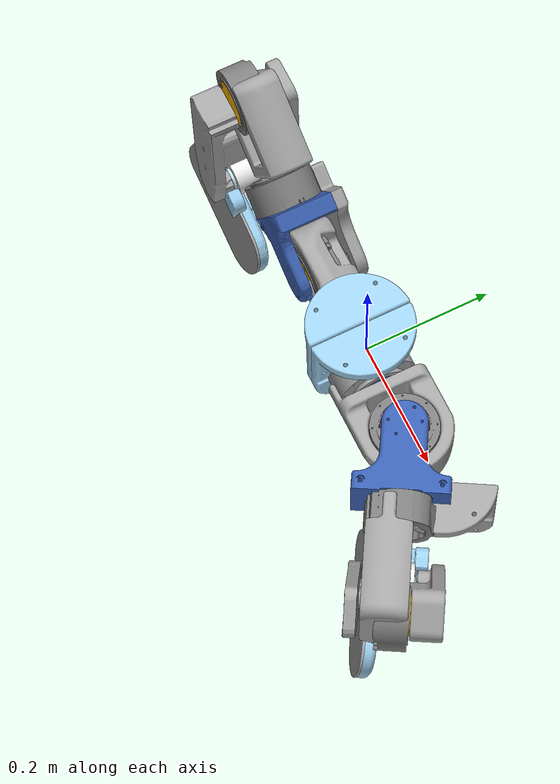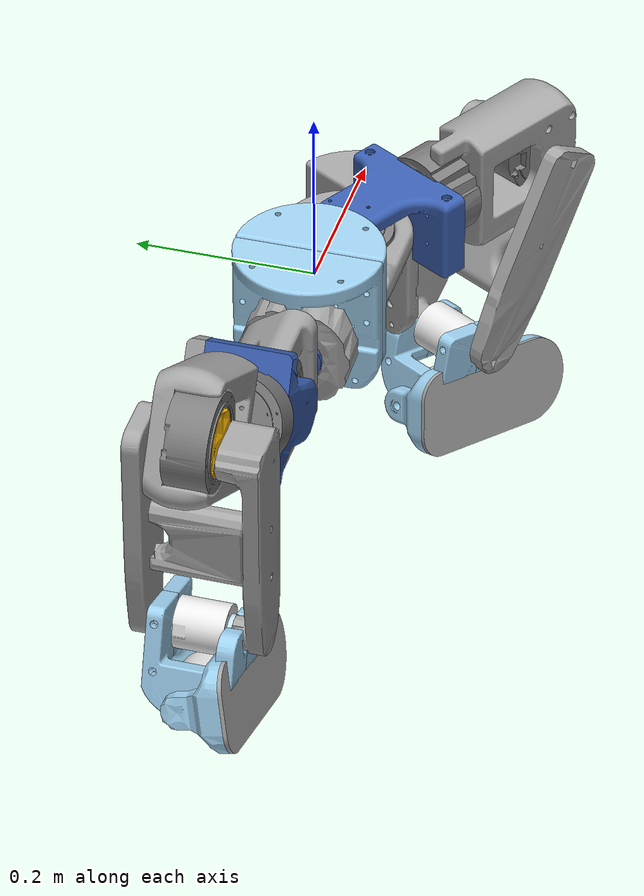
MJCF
<mujoco model="lower_limbs">
  <compiler angle="radian" meshdir="meshes/"/>

  <asset>
    <mesh name="leg_assembly_left_1_leg_part_1_2_simple" file="leg_assembly_left_1_leg_part_1_2_simple.stl"/>
    <mesh name="leg_assembly_right_1_leg_part_1_2_simple" file="leg_assembly_right_1_leg_part_1_2_simple.stl"/>
    <mesh name="leg_assembly_left_1_rmd_x12_150_mock_1_outer_x12_150_1_simple" file="leg_assembly_left_1_rmd_x12_150_mock_1_outer_x12_150_1_simple.stl"/>
    <mesh name="leg_assembly_right_1_rmd_x12_150_mock_1_outer_x12_150_1_simple" file="leg_assembly_right_1_rmd_x12_150_mock_1_outer_x12_150_1_simple.stl"/>
    <mesh name="leg_assembly_left_1_rmd_x12_150_mock_1_inner_x12_150_1_simple" file="leg_assembly_left_1_rmd_x12_150_mock_1_inner_x12_150_1_simple.stl"/>
    <mesh name="leg_assembly_right_1_rmd_x12_150_mock_1_inner_x12_150_1_simple" file="leg_assembly_right_1_rmd_x12_150_mock_1_inner_x12_150_1_simple.stl"/>
    <mesh name="leg_assembly_left_1_leg_part_2_left_1_simple" file="leg_assembly_left_1_leg_part_2_left_1_simple.stl"/>
    <mesh name="leg_assembly_right_1_leg_part_2_right_1_simple" file="leg_assembly_right_1_leg_part_2_right_1_simple.stl"/>
    <mesh name="leg_assembly_left_1_rmd_x8_90_mock_1_outer_rmd_x8_90_1_simple" file="leg_assembly_left_1_rmd_x8_90_mock_1_outer_rmd_x8_90_1_simple.stl"/>
    <mesh name="leg_assembly_right_1_rmd_x8_90_mock_1_outer_rmd_x8_90_1_simple" file="leg_assembly_right_1_rmd_x8_90_mock_1_outer_rmd_x8_90_1_simple.stl"/>
    <mesh name="leg_assembly_left_1_rmd_x8_90_mock_1_inner_rmd_x8_90_1_simple" file="leg_assembly_left_1_rmd_x8_90_mock_1_inner_rmd_x8_90_1_simple.stl"/>
    <mesh name="leg_assembly_right_1_rmd_x8_90_mock_1_inner_rmd_x8_90_1_simple" file="leg_assembly_right_1_rmd_x8_90_mock_1_inner_rmd_x8_90_1_simple.stl"/>
    <mesh name="leg_assembly_left_1_leg_part_3_1_simple" file="leg_assembly_left_1_leg_part_3_1_simple.stl"/>
    <mesh name="leg_assembly_right_1_leg_part_3_1_simple" file="leg_assembly_right_1_leg_part_3_1_simple.stl"/>
    <mesh name="leg_assembly_left_1_leg_part_4_1_simple" file="leg_assembly_left_1_leg_part_4_1_simple.stl"/>
    <mesh name="leg_assembly_left_1_rmd_x8_90_mock_2_outer_rmd_x8_90_1_simple" file="leg_assembly_left_1_rmd_x8_90_mock_2_outer_rmd_x8_90_1_simple.stl"/>
    <mesh name="leg_assembly_right_1_leg_part_4_1_simple" file="leg_assembly_right_1_leg_part_4_1_simple.stl"/>
    <mesh name="leg_assembly_right_1_rmd_x8_90_mock_2_outer_rmd_x8_90_1_simple" file="leg_assembly_right_1_rmd_x8_90_mock_2_outer_rmd_x8_90_1_simple.stl"/>
    <mesh name="leg_assembly_left_1_rmd_x8_90_mock_2_inner_rmd_x8_90_1_simple" file="leg_assembly_left_1_rmd_x8_90_mock_2_inner_rmd_x8_90_1_simple.stl"/>
    <mesh name="leg_assembly_right_1_rmd_x8_90_mock_2_inner_rmd_x8_90_1_simple" file="leg_assembly_right_1_rmd_x8_90_mock_2_inner_rmd_x8_90_1_simple.stl"/>
    <mesh name="leg_assembly_left_1_let_part_5_left_1_simple" file="leg_assembly_left_1_let_part_5_left_1_simple.stl"/>
    <mesh name="leg_assembly_right_1_leg_part_5_right_2_simple" file="leg_assembly_right_1_leg_part_5_right_2_simple.stl"/>
    <mesh name="leg_assembly_left_1_rmd_x8_90_mock_3_outer_rmd_x8_90_1_simple" file="leg_assembly_left_1_rmd_x8_90_mock_3_outer_rmd_x8_90_1_simple.stl"/>
    <mesh name="leg_assembly_right_1_rmd_x8_90_mock_3_outer_rmd_x8_90_1_simple" file="leg_assembly_right_1_rmd_x8_90_mock_3_outer_rmd_x8_90_1_simple.stl"/>
    <mesh name="leg_assembly_left_1_rmd_x8_90_mock_3_inner_rmd_x8_90_1_simple" file="leg_assembly_left_1_rmd_x8_90_mock_3_inner_rmd_x8_90_1_simple.stl"/>
    <mesh name="leg_assembly_right_1_rmd_x8_90_mock_3_inner_rmd_x8_90_1_simple" file="leg_assembly_right_1_rmd_x8_90_mock_3_inner_rmd_x8_90_1_simple.stl"/>
    <mesh name="leg_assembly_left_1_leg_part_6_2_simple" file="leg_assembly_left_1_leg_part_6_2_simple.stl"/>
    <mesh name="leg_assembly_right_1_leg_part_6_2_simple" file="leg_assembly_right_1_leg_part_6_2_simple.stl"/>
    <mesh name="leg_assembly_left_1_rmd_x4_24_mock_1_inner_rmd_x4_24_1_simple" file="leg_assembly_left_1_rmd_x4_24_mock_1_inner_rmd_x4_24_1_simple.stl"/>
    <mesh name="leg_assembly_left_1_leg_part_7_1_simple" file="leg_assembly_left_1_leg_part_7_1_simple.stl"/>
    <mesh name="leg_assembly_right_1_rmd_x4_24_mock_1_inner_rmd_x4_24_1_simple" file="leg_assembly_right_1_rmd_x4_24_mock_1_inner_rmd_x4_24_1_simple.stl"/>
    <mesh name="leg_assembly_right_1_leg_part_7_1_simple" file="leg_assembly_right_1_leg_part_7_1_simple.stl"/>
    <mesh name="leg_assembly_left_1_rmd_x4_24_mock_1_outer_rmd_x4_24_1_simple" file="leg_assembly_left_1_rmd_x4_24_mock_1_outer_rmd_x4_24_1_simple.stl"/>
    <mesh name="leg_assembly_right_1_rmd_x4_24_mock_1_outer_rmd_x4_24_1_simple" file="leg_assembly_right_1_rmd_x4_24_mock_1_outer_rmd_x4_24_1_simple.stl"/>
    <mesh name="left_foot_1_ankle_half_2_left_1_simple" file="left_foot_1_ankle_half_2_left_1_simple.stl"/>
    <mesh name="right_foot_1_ankle_half_2_right_2_simple" file="right_foot_1_ankle_half_2_right_2_simple.stl"/>
    <mesh name="left_foot_1_rmd_x4_24_mock_1_outer_rmd_x4_24_1_simple" file="left_foot_1_rmd_x4_24_mock_1_outer_rmd_x4_24_1_simple.stl"/>
    <mesh name="left_foot_1_ankle_half_1_left_2_simple" file="left_foot_1_ankle_half_1_left_2_simple.stl"/>
    <mesh name="right_foot_1_ankle_half_1_right_1_simple" file="right_foot_1_ankle_half_1_right_1_simple.stl"/>
    <mesh name="right_foot_1_rmd_x4_24_mock_1_outer_rmd_x4_24_1_simple" file="right_foot_1_rmd_x4_24_mock_1_outer_rmd_x4_24_1_simple.stl"/>
    <mesh name="left_foot_1_rmd_x4_24_mock_1_inner_rmd_x4_24_1_simple" file="left_foot_1_rmd_x4_24_mock_1_inner_rmd_x4_24_1_simple.stl"/>
    <mesh name="right_foot_1_rmd_x4_24_mock_1_inner_rmd_x4_24_1_simple" file="right_foot_1_rmd_x4_24_mock_1_inner_rmd_x4_24_1_simple.stl"/>
    <mesh name="left_foot_1_foot_1_simple" file="left_foot_1_foot_1_simple.stl"/>
    <mesh name="right_foot_1_foot_1_simple" file="right_foot_1_foot_1_simple.stl"/>
    <mesh name="left_foot_1_rubber_grip_1_simple" file="left_foot_1_rubber_grip_1_simple.stl"/>
    <mesh name="right_foot_1_rubber_grip_3_simple" file="right_foot_1_rubber_grip_3_simple.stl"/>
  </asset>

  <worldbody>
    <body name="root">
      <geom type="mesh" rgba="0.615686 0.811765 0.929412 1" mesh="leg_assembly_left_1_leg_part_1_2_simple"/>
      <geom pos="-0.0209987 -0.0690001 0.0170241" quat="0.5 -0.5 -0.5 0.5" type="mesh" rgba="0.615686 0.811765 0.929412 1" mesh="leg_assembly_right_1_leg_part_1_2_simple"/>
      <geom pos="-0.0409987 -0.0071598 0.0055805" quat="-0.5 -0.5 0.5 0.5" type="mesh" rgba="0.647059 0.647059 0.647059 1" mesh="leg_assembly_right_1_rmd_x12_150_mock_1_outer_x12_150_1_simple"/>
      <geom pos="-0.000998677 0.0071596 0.0055805" quat="0.5 0.5 0.5 0.5" type="mesh" rgba="0.647059 0.647059 0.647059 1" mesh="leg_assembly_left_1_rmd_x12_150_mock_1_outer_x12_150_1_simple"/>
      <body name="link_leg_assembly_right_1_rmd_x12_150_mock_1_inner_x12_150_1" pos="-0.0654987 -9.85788e-08 -0.0519759" quat="0.707107 0 0.707107 -5.17638e-08">
        <inertial pos="0.000159261 0.00902113 -0.094125" quat="0.705448 -0.000335157 0.0178577 0.708537" mass="0.756573" diaginertia="0.00196556 0.00139216 0.000974605"/>
        <joint name="right hip pitch" pos="0 0 0" axis="0 0 -1" range="-4.71239 4.71239" actuatorfrcrange="-80 80"/>
        <geom type="mesh" rgba="0.231373 0.380392 0.705882 1" mesh="leg_assembly_right_1_rmd_x12_150_mock_1_inner_x12_150_1_simple"/>
        <geom pos="0 0 -0.023" quat="0.707107 0 0 0.707107" type="mesh" rgba="0.647059 0.647059 0.647059 1" mesh="leg_assembly_right_1_leg_part_2_right_1_simple"/>
        <geom pos="-0.0185601 0.02785 -0.0566918" quat="0.707107 -0.707107 0 0" type="mesh" rgba="0.498039 0.498039 0.498039 1" mesh="leg_assembly_right_1_rmd_x8_90_mock_1_outer_rmd_x8_90_1_simple"/>
        <body name="link_leg_assembly_right_1_rmd_x8_90_mock_1_inner_rmd_x8_90_1" pos="7.46238e-10 -0.01965 -0.1015" quat="0.707107 0.707107 0 0">
          <inertial pos="-0.0373825 -0.0647483 -0.0203372" quat="0.672361 0.6935 -0.185823 -0.180159" mass="1.13448" diaginertia="0.00509051 0.00495498 0.00182546"/>
          <joint name="right hip yaw" pos="0 0 0" axis="0 0 -1" range="-4.71239 4.71239" actuatorfrcrange="-80 80"/>
          <geom type="mesh" rgba="0.980392 0.713726 0.00392157 1" mesh="leg_assembly_right_1_rmd_x8_90_mock_1_inner_rmd_x8_90_1_simple"/>
          <geom pos="0.0216506 0.0125 0.0035" quat="-1.16026e-08 0.5 -0.866025 2.00962e-08" type="mesh" rgba="0.231373 0.380392 0.705882 1" mesh="leg_assembly_right_1_leg_part_3_1_simple"/>
          <geom pos="0.00446153 -0.112272 -0.072" quat="-0.5 -2.32051e-08 4.01924e-08 0.866025" type="mesh" rgba="0.647059 0.647059 0.647059 1" mesh="leg_assembly_right_1_leg_part_4_1_simple"/>
          <geom pos="-0.016195 -0.117667 -0.00108985" quat="-0.683013 0.683013 -0.183013 0.183013" type="mesh" rgba="0.498039 0.498039 0.498039 1" mesh="leg_assembly_right_1_rmd_x8_90_mock_2_outer_rmd_x8_90_1_simple"/>
          <body name="link_leg_assembly_right_1_rmd_x8_90_mock_2_inner_rmd_x8_90_1" pos="-0.07875 -0.136399 -0.01965" quat="-0.683013 -0.683013 0.183013 0.183013">
            <inertial pos="0.000314021 -0.00752051 0.0700513" quat="0.708875 0.00731707 -0.0133323 0.705171" mass="1.13901" diaginertia="0.00601107 0.00514035 0.00158692"/>
            <joint name="right hip roll" pos="0 0 0" axis="0 0 -1" range="-3.14159 3.14159" actuatorfrcrange="-80 80"/>
            <geom type="mesh" rgba="0.980392 0.713726 0.00392157 1" mesh="leg_assembly_right_1_rmd_x8_90_mock_2_inner_rmd_x8_90_1_simple"/>
            <geom pos="-0.0216506 -0.0125 0.0035" quat="-1.64085e-08 0.707107 0.707107 -1.64085e-08" type="mesh" rgba="0.647059 0.647059 0.647059 1" mesh="leg_assembly_right_1_leg_part_5_right_2_simple"/>
            <geom pos="0.0448082 -0.02685 0.10844" quat="0.5 0.5 0.5 -0.5" type="mesh" rgba="0.498039 0.498039 0.498039 1" mesh="leg_assembly_right_1_rmd_x8_90_mock_3_outer_rmd_x8_90_1_simple"/>
            <body name="link_leg_assembly_right_1_rmd_x8_90_mock_3_inner_rmd_x8_90_1" pos="6.61991e-09 0.02065 0.127" quat="-0.5 0.5 -0.5 -0.5">
              <inertial pos="0.0449624 -0.0780024 -0.0105593" quat="0.691941 0.674006 0.18614 0.179682" mass="0.88694" diaginertia="0.00985766 0.00713533 0.00349125"/>
              <joint name="right knee pitch" pos="0 0 0" axis="0 0 -1" range="-4.71239 4.71239" actuatorfrcrange="-80 80"/>
              <geom type="mesh" rgba="0.980392 0.713726 0.00392157 1" mesh="leg_assembly_right_1_rmd_x8_90_mock_3_inner_rmd_x8_90_1_simple"/>
              <geom pos="0.0216506 0.0125 0.0035" quat="-2.00962e-08 0.866025 -0.5 1.16026e-08" type="mesh" rgba="0.647059 0.647059 0.647059 1" mesh="leg_assembly_right_1_leg_part_6_2_simple"/>
              <geom pos="0.111714 -0.219494 0.0121" quat="-0.104528 -2.36245e-08 1.36396e-08 0.994522" type="mesh" rgba="0.768627 0.886275 0.952941 1" mesh="leg_assembly_right_1_rmd_x4_24_mock_1_inner_rmd_x4_24_1_simple"/>
              <geom pos="0.0825 -0.142894 -0.074" quat="-2.00962e-08 0.866025 -0.5 1.16026e-08" type="mesh" rgba="0.647059 0.647059 0.647059 1" mesh="leg_assembly_right_1_leg_part_7_1_simple"/>
              <body name="link_leg_assembly_right_1_rmd_x4_24_mock_1_outer_rmd_x4_24_1" pos="0.123 -0.213042 -0.0129" quat="2.60501e-08 -0.104528 0.994522 -3.67176e-08">
                <inertial pos="-0.000520129 -0.0339665 0.0111351" quat="0.530142 0.546765 -0.472492 0.443563" mass="0.607709" diaginertia="0.0011141 0.00101039 0.00057127"/>
                <joint name="right ankle pitch" pos="0 0 0" axis="0 0 -1" range="-1.5708 2.18166" actuatorfrcrange="-80 80"/>
                <geom type="mesh" rgba="0.917647 0.917647 0.917647 1" mesh="leg_assembly_right_1_rmd_x4_24_mock_1_outer_rmd_x4_24_1_simple"/>
                <geom pos="-0.01225 -0.0212176 -0.02" quat="1 0 0 0" type="mesh" rgba="0.615686 0.811765 0.929412 1" mesh="right_foot_1_ankle_half_2_right_2_simple"/>
                <geom pos="0 -0.038 -0.02845" quat="-1.64085e-08 -0.707107 -1.64085e-08 0.707107" type="mesh" rgba="0.615686 0.811765 0.929412 1" mesh="right_foot_1_ankle_half_1_right_1_simple"/>
                <geom pos="-0.0335 -0.04705 0.01055" quat="0.707107 0 0.707107 0" type="mesh" rgba="0.917647 0.917647 0.917647 1" mesh="right_foot_1_rmd_x4_24_mock_1_outer_rmd_x4_24_1_simple"/>
                <body name="link_right_foot_1_rmd_x4_24_mock_1_inner_rmd_x4_24_1" pos="-0.0135 -0.07155 0.01055" quat="0.5 0.5 0.5 0.5">
                  <inertial pos="0.00584595 -0.0275033 -0.0114478" quat="0.994413 -0.0147465 -0.00155005 0.10451" mass="0.422846" diaginertia="0.00136272 0.00135059 0.000429099"/>
                  <joint name="right ankle roll" pos="0 0 0" axis="0 0 -1" range="-3.14159 3.14159" actuatorfrcrange="-80 80"/>
                  <geom type="mesh" rgba="0.768627 0.886275 0.952941 1" mesh="right_foot_1_rmd_x4_24_mock_1_inner_rmd_x4_24_1_simple"/>
                  <geom pos="0.00275746 -0.0127042 -0.025" quat="0.994522 0 0 0.104528" type="mesh" rgba="0.615686 0.811765 0.929412 1" mesh="right_foot_1_foot_1_simple"/>
                  <geom pos="0.0103956 -0.0489074 -0.0147699" quat="-0.0739128 -0.0739128 0.703233 0.703233" type="mesh" rgba="0.647059 0.647059 0.647059 1" mesh="right_foot_1_rubber_grip_3_simple"/>
                </body>
              </body>
            </body>
          </body>
        </body>
      </body>
      <body name="link_leg_assembly_left_1_rmd_x12_150_mock_1_inner_x12_150_1" pos="0.0235013 -9.74565e-08 -0.0519759" quat="-3.53553e-08 0.707107 -1.64085e-08 -0.707107">
        <inertial pos="0.0043837 -0.000451217 -0.094125" quat="0.999746 -0.0138971 0.0176168 -0.00189402" mass="0.756573" diaginertia="0.00196614 0.0013907 0.000972437"/>
        <joint name="left hip pitch" pos="0 0 0" axis="0 0 -1" range="-4.71239 4.71239" actuatorfrcrange="-80 80"/>
        <geom type="mesh" rgba="0.231373 0.380392 0.705882 1" mesh="leg_assembly_left_1_rmd_x12_150_mock_1_inner_x12_150_1_simple"/>
        <geom pos="0 -0.0185 -0.023" type="mesh" rgba="0.647059 0.647059 0.647059 1" mesh="leg_assembly_left_1_leg_part_2_left_1_simple"/>
        <geom pos="0.0230618 0.0179298 -0.146308" quat="0.5 -0.5 0.5 -0.5" type="mesh" rgba="0.498039 0.498039 0.498039 1" mesh="leg_assembly_left_1_rmd_x8_90_mock_1_outer_rmd_x8_90_1_simple"/>
        <body name="link_leg_assembly_left_1_rmd_x8_90_mock_1_inner_rmd_x8_90_1" pos="-0.0244382 -0.000630373 -0.1015" quat="0.5 0.5 -0.5 -0.5">
          <inertial pos="-0.0373825 -0.0647483 -0.0203372" quat="0.672361 0.6935 -0.185823 -0.180159" mass="1.13448" diaginertia="0.00509051 0.00495498 0.00182546"/>
          <joint name="left hip yaw" pos="0 0 0" axis="0 0 -1" range="-1.0472 2.0944" actuatorfrcrange="-80 80"/>
          <geom type="mesh" rgba="0.980392 0.713726 0.00392157 1" mesh="leg_assembly_left_1_rmd_x8_90_mock_1_inner_rmd_x8_90_1_simple"/>
          <geom pos="0.0216506 0.0125 0.0035" quat="-1.16026e-08 0.5 -0.866025 2.00962e-08" type="mesh" rgba="0.231373 0.380392 0.705882 1" mesh="leg_assembly_left_1_leg_part_3_1_simple"/>
          <geom pos="0.00446153 -0.112272 -0.072" quat="-0.5 -2.32051e-08 4.01924e-08 0.866025" type="mesh" rgba="0.647059 0.647059 0.647059 1" mesh="leg_assembly_left_1_leg_part_4_1_simple"/>
          <geom pos="-0.016195 -0.117667 -0.00108985" quat="-0.683013 0.683013 -0.183013 0.183013" type="mesh" rgba="0.498039 0.498039 0.498039 1" mesh="leg_assembly_left_1_rmd_x8_90_mock_2_outer_rmd_x8_90_1_simple"/>
          <body name="link_leg_assembly_left_1_rmd_x8_90_mock_2_inner_rmd_x8_90_1" pos="-0.07875 -0.136399 -0.01965" quat="-0.683013 -0.683013 0.183013 0.183013">
            <inertial pos="-0.0075205 0.000314022 0.0700513" quat="0.999881 0.00425341 -0.0146013 0.0026192" mass="1.13901" diaginertia="0.00601107 0.00514035 0.00158692"/>
            <joint name="left hip roll" pos="0 0 0" axis="0 0 -1" range="-3.14159 0" actuatorfrcrange="-80 80"/>
            <geom type="mesh" rgba="0.980392 0.713726 0.00392157 1" mesh="leg_assembly_left_1_rmd_x8_90_mock_2_inner_rmd_x8_90_1_simple"/>
            <geom pos="0 0 0.0035" quat="0 -2.32051e-08 1 -2.32051e-08" type="mesh" rgba="0.647059 0.647059 0.647059 1" mesh="leg_assembly_left_1_let_part_5_left_1_simple"/>
            <geom pos="-0.02685 0.0448082 0.10844" quat="-4.92255e-08 -0.707107 -1.64085e-08 0.707107" type="mesh" rgba="0.498039 0.498039 0.498039 1" mesh="leg_assembly_left_1_rmd_x8_90_mock_3_outer_rmd_x8_90_1_simple"/>
            <body name="link_leg_assembly_left_1_rmd_x8_90_mock_3_inner_rmd_x8_90_1" pos="0.02065 8.89452e-09 0.127" quat="0.707107 -3.2817e-08 0.707107 0">
              <inertial pos="0.0449624 -0.0780024 -0.0105593" quat="0.691941 0.674006 0.18614 0.179682" mass="0.88694" diaginertia="0.00985766 0.00713533 0.00349125"/>
              <joint name="left knee pitch" pos="0 0 0" axis="0 0 -1" range="-4.71239 4.71239" actuatorfrcrange="-80 80"/>
              <geom type="mesh" rgba="0.980392 0.713726 0.00392157 1" mesh="leg_assembly_left_1_rmd_x8_90_mock_3_inner_rmd_x8_90_1_simple"/>
              <geom pos="0.0216506 0.0125 0.0035" quat="-2.00962e-08 0.866025 -0.5 1.16026e-08" type="mesh" rgba="0.647059 0.647059 0.647059 1" mesh="leg_assembly_left_1_leg_part_6_2_simple"/>
              <geom pos="0.111714 -0.219494 0.0121" quat="-0.104528 -2.36245e-08 1.36396e-08 0.994522" type="mesh" rgba="0.768627 0.886275 0.952941 1" mesh="leg_assembly_left_1_rmd_x4_24_mock_1_inner_rmd_x4_24_1_simple"/>
              <geom pos="0.0825 -0.142894 -0.074" quat="-2.00962e-08 0.866025 -0.5 1.16026e-08" type="mesh" rgba="0.647059 0.647059 0.647059 1" mesh="leg_assembly_left_1_leg_part_7_1_simple"/>
              <body name="link_leg_assembly_left_1_rmd_x4_24_mock_1_outer_rmd_x4_24_1" pos="0.123 -0.213042 -0.0129" quat="2.60501e-08 -0.104528 0.994522 -3.67176e-08">
                <inertial pos="0.000520119 -0.0339665 0.0111351" quat="0.447691 0.46851 -0.533493 0.543559" mass="0.60771" diaginertia="0.00111303 0.00101075 0.000571984"/>
                <joint name="left ankle pitch" pos="0 0 0" axis="0 0 -1" range="-1.5708 2.18166" actuatorfrcrange="-80 80"/>
                <geom type="mesh" rgba="0.917647 0.917647 0.917647 1" mesh="leg_assembly_left_1_rmd_x4_24_mock_1_outer_rmd_x4_24_1_simple"/>
                <geom pos="0.01225 -0.0212176 -0.02" quat="1 0 0 0" type="mesh" rgba="0.615686 0.811765 0.929412 1" mesh="left_foot_1_ankle_half_2_left_1_simple"/>
                <geom pos="0.0335 -0.04705 0.01055" quat="-1.64085e-08 0.707107 -1.64085e-08 -0.707107" type="mesh" rgba="0.917647 0.917647 0.917647 1" mesh="left_foot_1_rmd_x4_24_mock_1_outer_rmd_x4_24_1_simple"/>
                <geom pos="0 0.0145 0.04735" quat="0.707107 0 0.707107 0" type="mesh" rgba="0.615686 0.811765 0.929412 1" mesh="left_foot_1_ankle_half_1_left_2_simple"/>
                <body name="link_left_foot_1_rmd_x4_24_mock_1_inner_rmd_x4_24_1" pos="0.0135 -0.07155 0.01055" quat="-0.5 0.5 0.5 -0.5">
                  <inertial pos="0.00584595 -0.0275033 -0.0114478" quat="0.994413 -0.0147465 -0.00155004 0.104511" mass="0.422846" diaginertia="0.00136272 0.00135059 0.000429099"/>
                  <joint name="left ankle roll" pos="0 0 0" axis="0 0 -1" range="-3.14159 3.14159" actuatorfrcrange="-80 80"/>
                  <geom type="mesh" rgba="0.768627 0.886275 0.952941 1" mesh="left_foot_1_rmd_x4_24_mock_1_inner_rmd_x4_24_1_simple"/>
                  <geom pos="0.00275746 -0.0127042 -0.025" quat="0.994522 0 0 0.104528" type="mesh" rgba="0.615686 0.811765 0.929412 1" mesh="left_foot_1_foot_1_simple"/>
                  <geom pos="0.0103956 -0.0489074 -0.0147699" quat="0.703233 -0.703233 -0.0739128 0.0739128" type="mesh" rgba="0.647059 0.647059 0.647059 1" mesh="left_foot_1_rubber_grip_1_simple"/>
                </body>
              </body>
            </body>
          </body>
        </body>
      </body>
    </body>
  </worldbody>
</mujoco>
